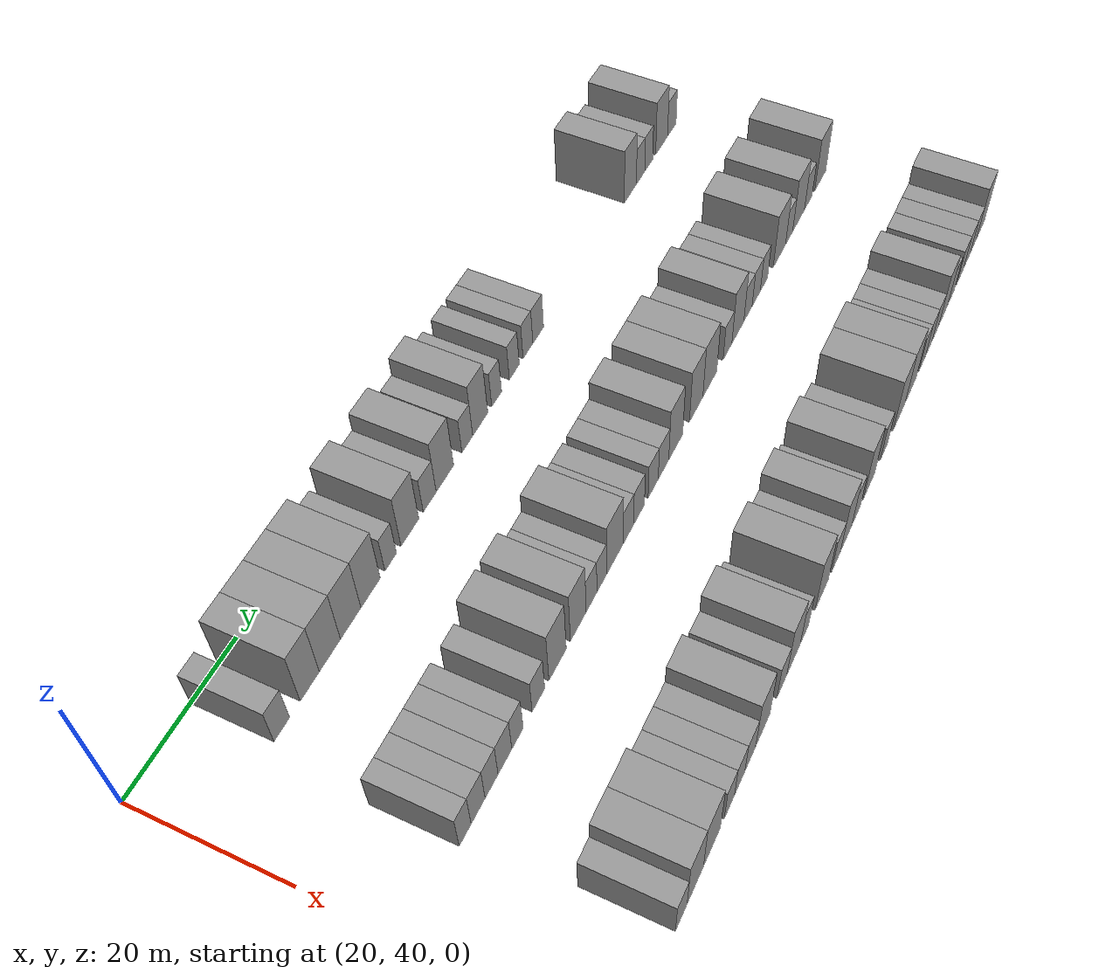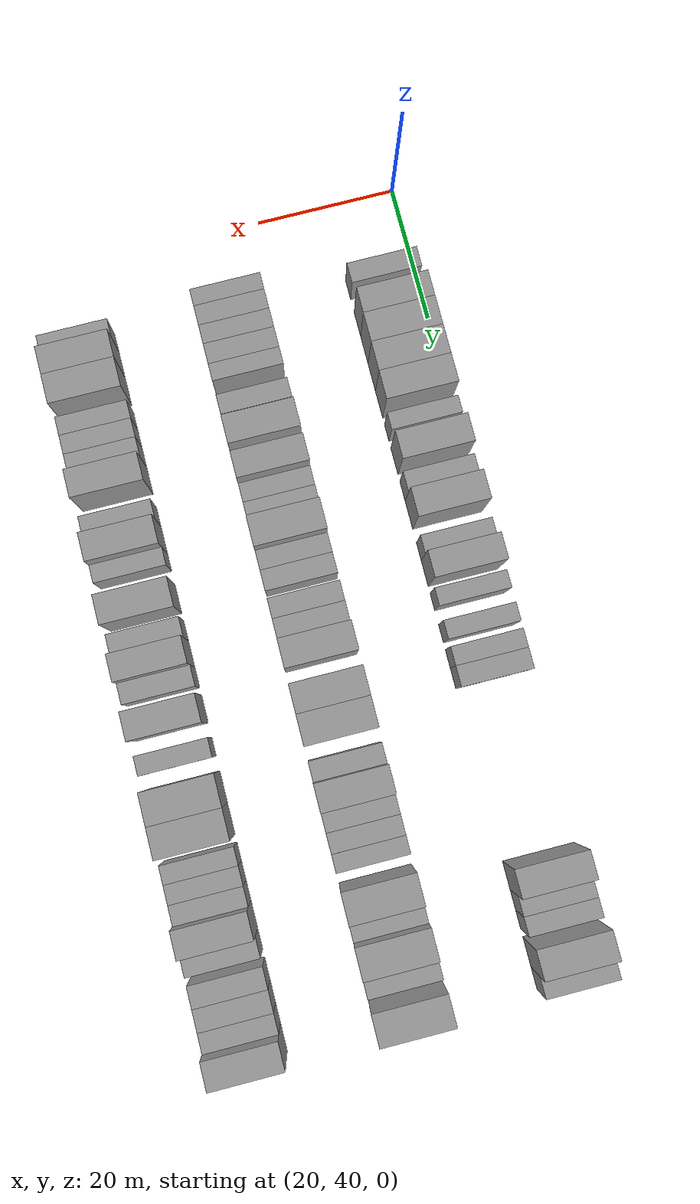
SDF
<sdf version="1.6">
 <world name="default">
  <model name="building_79">
   <static>1</static>
   <pose>25.0000 53.1087 0 0.000000 0.000000 0.000000</pose>
   <link name="link">
    <pose>0 0 3.00 0 0 0</pose>
    <collision name="collision"><geometry><box><size>10.0000 2.8990 6.0000</size></box></geometry></collision>
    <visual name="visual">
     <cast_shadows>0</cast_shadows>
     <geometry><box><size>10.0000 2.8990 6.0000</size></box></geometry>
     <material>
      <script>
       <uri>model://grey_wall/materials/scripts</uri>
       <uri>model://grey_wall/materials/textures</uri>
       <name>vrc/grey_wall</name>
      </script>
     </material>
    </visual>
   </link>
  </model>
  <model name="building_80">
   <static>1</static>
   <pose>25.0000 58.3945 0 0.000000 0.000000 0.000000</pose>
   <link name="link">
    <pose>0 0 4.50 0 0 0</pose>
    <collision name="collision"><geometry><box><size>10.0000 3.6726 9.0000</size></box></geometry></collision>
    <visual name="visual">
     <cast_shadows>0</cast_shadows>
     <geometry><box><size>10.0000 3.6726 9.0000</size></box></geometry>
     <material>
      <script>
       <uri>model://grey_wall/materials/scripts</uri>
       <uri>model://grey_wall/materials/textures</uri>
       <name>vrc/grey_wall</name>
      </script>
     </material>
    </visual>
   </link>
  </model>
  <model name="building_81">
   <static>1</static>
   <pose>25.0000 62.3206 0 0.000000 0.000000 0.000000</pose>
   <link name="link">
    <pose>0 0 4.50 0 0 0</pose>
    <collision name="collision"><geometry><box><size>10.0000 4.1797 9.0000</size></box></geometry></collision>
    <visual name="visual">
     <cast_shadows>0</cast_shadows>
     <geometry><box><size>10.0000 4.1797 9.0000</size></box></geometry>
     <material>
      <script>
       <uri>model://grey_wall/materials/scripts</uri>
       <uri>model://grey_wall/materials/textures</uri>
       <name>vrc/grey_wall</name>
      </script>
     </material>
    </visual>
   </link>
  </model>
  <model name="building_82">
   <static>1</static>
   <pose>25.0000 66.4880 0 0.000000 0.000000 0.000000</pose>
   <link name="link">
    <pose>0 0 4.50 0 0 0</pose>
    <collision name="collision"><geometry><box><size>10.0000 4.1550 9.0000</size></box></geometry></collision>
    <visual name="visual">
     <cast_shadows>0</cast_shadows>
     <geometry><box><size>10.0000 4.1550 9.0000</size></box></geometry>
     <material>
      <script>
       <uri>model://grey_wall/materials/scripts</uri>
       <uri>model://grey_wall/materials/textures</uri>
       <name>vrc/grey_wall</name>
      </script>
     </material>
    </visual>
   </link>
  </model>
  <model name="building_83">
   <static>1</static>
   <pose>25.0000 70.5972 0 0.000000 0.000000 0.000000</pose>
   <link name="link">
    <pose>0 0 4.50 0 0 0</pose>
    <collision name="collision"><geometry><box><size>10.0000 4.0636 9.0000</size></box></geometry></collision>
    <visual name="visual">
     <cast_shadows>0</cast_shadows>
     <geometry><box><size>10.0000 4.0636 9.0000</size></box></geometry>
     <material>
      <script>
       <uri>model://grey_wall/materials/scripts</uri>
       <uri>model://grey_wall/materials/textures</uri>
       <name>vrc/grey_wall</name>
      </script>
     </material>
    </visual>
   </link>
  </model>
  <model name="building_84">
   <static>1</static>
   <pose>25.0000 74.8687 0 0.000000 0.000000 0.000000</pose>
   <link name="link">
    <pose>0 0 3.00 0 0 0</pose>
    <collision name="collision"><geometry><box><size>10.0000 2.4794 6.0000</size></box></geometry></collision>
    <visual name="visual">
     <cast_shadows>0</cast_shadows>
     <geometry><box><size>10.0000 2.4794 6.0000</size></box></geometry>
     <material>
      <script>
       <uri>model://grey_wall/materials/scripts</uri>
       <uri>model://grey_wall/materials/textures</uri>
       <name>vrc/grey_wall</name>
      </script>
     </material>
    </visual>
   </link>
  </model>
  <model name="building_85">
   <static>1</static>
   <pose>25.0000 79.0882 0 0.000000 0.000000 0.000000</pose>
   <link name="link">
    <pose>0 0 4.50 0 0 0</pose>
    <collision name="collision"><geometry><box><size>10.0000 3.9595 9.0000</size></box></geometry></collision>
    <visual name="visual">
     <cast_shadows>0</cast_shadows>
     <geometry><box><size>10.0000 3.9595 9.0000</size></box></geometry>
     <material>
      <script>
       <uri>model://grey_wall/materials/scripts</uri>
       <uri>model://grey_wall/materials/textures</uri>
       <name>vrc/grey_wall</name>
      </script>
     </material>
    </visual>
   </link>
  </model>
  <model name="building_86">
   <static>1</static>
   <pose>25.0000 83.5553 0 0.000000 0.000000 0.000000</pose>
   <link name="link">
    <pose>0 0 3.00 0 0 0</pose>
    <collision name="collision"><geometry><box><size>10.0000 2.9748 6.0000</size></box></geometry></collision>
    <visual name="visual">
     <cast_shadows>0</cast_shadows>
     <geometry><box><size>10.0000 2.9748 6.0000</size></box></geometry>
     <material>
      <script>
       <uri>model://grey_wall/materials/scripts</uri>
       <uri>model://grey_wall/materials/textures</uri>
       <name>vrc/grey_wall</name>
      </script>
     </material>
    </visual>
   </link>
  </model>
  <model name="building_87">
   <static>1</static>
   <pose>25.0000 87.0784 0 0.000000 0.000000 0.000000</pose>
   <link name="link">
    <pose>0 0 4.50 0 0 0</pose>
    <collision name="collision"><geometry><box><size>10.0000 4.0715 9.0000</size></box></geometry></collision>
    <visual name="visual">
     <cast_shadows>0</cast_shadows>
     <geometry><box><size>10.0000 4.0715 9.0000</size></box></geometry>
     <material>
      <script>
       <uri>model://grey_wall/materials/scripts</uri>
       <uri>model://grey_wall/materials/textures</uri>
       <name>vrc/grey_wall</name>
      </script>
     </material>
    </visual>
   </link>
  </model>
  <model name="building_88">
   <static>1</static>
   <pose>25.0000 92.4299 0 0.000000 0.000000 0.000000</pose>
   <link name="link">
    <pose>0 0 3.00 0 0 0</pose>
    <collision name="collision"><geometry><box><size>10.0000 2.6314 6.0000</size></box></geometry></collision>
    <visual name="visual">
     <cast_shadows>0</cast_shadows>
     <geometry><box><size>10.0000 2.6314 6.0000</size></box></geometry>
     <material>
      <script>
       <uri>model://grey_wall/materials/scripts</uri>
       <uri>model://grey_wall/materials/textures</uri>
       <name>vrc/grey_wall</name>
      </script>
     </material>
    </visual>
   </link>
  </model>
  <model name="building_89">
   <static>1</static>
   <pose>25.0000 95.6100 0 0.000000 0.000000 0.000000</pose>
   <link name="link">
    <pose>0 0 4.50 0 0 0</pose>
    <collision name="collision"><geometry><box><size>10.0000 3.7290 9.0000</size></box></geometry></collision>
    <visual name="visual">
     <cast_shadows>0</cast_shadows>
     <geometry><box><size>10.0000 3.7290 9.0000</size></box></geometry>
     <material>
      <script>
       <uri>model://grey_wall/materials/scripts</uri>
       <uri>model://grey_wall/materials/textures</uri>
       <name>vrc/grey_wall</name>
      </script>
     </material>
    </visual>
   </link>
  </model>
  <model name="building_90">
   <static>1</static>
   <pose>25.0000 99.7196 0 0.000000 0.000000 0.000000</pose>
   <link name="link">
    <pose>0 0 3.00 0 0 0</pose>
    <collision name="collision"><geometry><box><size>10.0000 2.4901 6.0000</size></box></geometry></collision>
    <visual name="visual">
     <cast_shadows>0</cast_shadows>
     <geometry><box><size>10.0000 2.4901 6.0000</size></box></geometry>
     <material>
      <script>
       <uri>model://grey_wall/materials/scripts</uri>
       <uri>model://grey_wall/materials/textures</uri>
       <name>vrc/grey_wall</name>
      </script>
     </material>
    </visual>
   </link>
  </model>
  <model name="building_91">
   <static>1</static>
   <pose>25.0000 104.2655 0 0.000000 0.000000 0.000000</pose>
   <link name="link">
    <pose>0 0 3.00 0 0 0</pose>
    <collision name="collision"><geometry><box><size>10.0000 2.6017 6.0000</size></box></geometry></collision>
    <visual name="visual">
     <cast_shadows>0</cast_shadows>
     <geometry><box><size>10.0000 2.6017 6.0000</size></box></geometry>
     <material>
      <script>
       <uri>model://grey_wall/materials/scripts</uri>
       <uri>model://grey_wall/materials/textures</uri>
       <name>vrc/grey_wall</name>
      </script>
     </material>
    </visual>
   </link>
  </model>
  <model name="building_92">
   <static>1</static>
   <pose>25.0000 107.8807 0 0.000000 0.000000 0.000000</pose>
   <link name="link">
    <pose>0 0 3.00 0 0 0</pose>
    <collision name="collision"><geometry><box><size>10.0000 2.6288 6.0000</size></box></geometry></collision>
    <visual name="visual">
     <cast_shadows>0</cast_shadows>
     <geometry><box><size>10.0000 2.6288 6.0000</size></box></geometry>
     <material>
      <script>
       <uri>model://grey_wall/materials/scripts</uri>
       <uri>model://grey_wall/materials/textures</uri>
       <name>vrc/grey_wall</name>
      </script>
     </material>
    </visual>
   </link>
  </model>
  <model name="building_93">
   <static>1</static>
   <pose>25.0000 110.6476 0 0.000000 0.000000 0.000000</pose>
   <link name="link">
    <pose>0 0 3.00 0 0 0</pose>
    <collision name="collision"><geometry><box><size>10.0000 2.9050 6.0000</size></box></geometry></collision>
    <visual name="visual">
     <cast_shadows>0</cast_shadows>
     <geometry><box><size>10.0000 2.9050 6.0000</size></box></geometry>
     <material>
      <script>
       <uri>model://grey_wall/materials/scripts</uri>
       <uri>model://grey_wall/materials/textures</uri>
       <name>vrc/grey_wall</name>
      </script>
     </material>
    </visual>
   </link>
  </model>
  <model name="building_94">
   <static>1</static>
   <pose>25.0000 137.8790 0 0.000000 0.000000 0.000000</pose>
   <link name="link">
    <pose>0 0 4.50 0 0 0</pose>
    <collision name="collision"><geometry><box><size>10.0000 3.8525 9.0000</size></box></geometry></collision>
    <visual name="visual">
     <cast_shadows>0</cast_shadows>
     <geometry><box><size>10.0000 3.8525 9.0000</size></box></geometry>
     <material>
      <script>
       <uri>model://grey_wall/materials/scripts</uri>
       <uri>model://grey_wall/materials/textures</uri>
       <name>vrc/grey_wall</name>
      </script>
     </material>
    </visual>
   </link>
  </model>
  <model name="building_95">
   <static>1</static>
   <pose>25.0000 141.1552 0 0.000000 0.000000 0.000000</pose>
   <link name="link">
    <pose>0 0 3.00 0 0 0</pose>
    <collision name="collision"><geometry><box><size>10.0000 2.7000 6.0000</size></box></geometry></collision>
    <visual name="visual">
     <cast_shadows>0</cast_shadows>
     <geometry><box><size>10.0000 2.7000 6.0000</size></box></geometry>
     <material>
      <script>
       <uri>model://grey_wall/materials/scripts</uri>
       <uri>model://grey_wall/materials/textures</uri>
       <name>vrc/grey_wall</name>
      </script>
     </material>
    </visual>
   </link>
  </model>
  <model name="building_96">
   <static>1</static>
   <pose>25.0000 143.8195 0 0.000000 0.000000 0.000000</pose>
   <link name="link">
    <pose>0 0 3.00 0 0 0</pose>
    <collision name="collision"><geometry><box><size>10.0000 2.6285 6.0000</size></box></geometry></collision>
    <visual name="visual">
     <cast_shadows>0</cast_shadows>
     <geometry><box><size>10.0000 2.6285 6.0000</size></box></geometry>
     <material>
      <script>
       <uri>model://grey_wall/materials/scripts</uri>
       <uri>model://grey_wall/materials/textures</uri>
       <name>vrc/grey_wall</name>
      </script>
     </material>
    </visual>
   </link>
  </model>
  <model name="building_97">
   <static>1</static>
   <pose>25.0000 148.1342 0 0.000000 0.000000 0.000000</pose>
   <link name="link">
    <pose>0 0 4.50 0 0 0</pose>
    <collision name="collision"><geometry><box><size>10.0000 4.0010 9.0000</size></box></geometry></collision>
    <visual name="visual">
     <cast_shadows>0</cast_shadows>
     <geometry><box><size>10.0000 4.0010 9.0000</size></box></geometry>
     <material>
      <script>
       <uri>model://grey_wall/materials/scripts</uri>
       <uri>model://grey_wall/materials/textures</uri>
       <name>vrc/grey_wall</name>
      </script>
     </material>
    </visual>
   </link>
  </model>
  <model name="building_98">
   <static>1</static>
   <pose>25.0000 151.5983 0 0.000000 0.000000 0.000000</pose>
   <link name="link">
    <pose>0 0 3.00 0 0 0</pose>
    <collision name="collision"><geometry><box><size>10.0000 2.9272 6.0000</size></box></geometry></collision>
    <visual name="visual">
     <cast_shadows>0</cast_shadows>
     <geometry><box><size>10.0000 2.9272 6.0000</size></box></geometry>
     <material>
      <script>
       <uri>model://grey_wall/materials/scripts</uri>
       <uri>model://grey_wall/materials/textures</uri>
       <name>vrc/grey_wall</name>
      </script>
     </material>
    </visual>
   </link>
  </model>
  <model name="building_198">
   <static>1</static>
   <pose>47.0000 51.1799 0 0.000000 0.000000 0.000000</pose>
   <link name="link">
    <pose>0 0 3.00 0 0 0</pose>
    <collision name="collision"><geometry><box><size>10.0000 2.4320 6.0000</size></box></geometry></collision>
    <visual name="visual">
     <cast_shadows>0</cast_shadows>
     <geometry><box><size>10.0000 2.4320 6.0000</size></box></geometry>
     <material>
      <script>
       <uri>model://grey_wall/materials/scripts</uri>
       <uri>model://grey_wall/materials/textures</uri>
       <name>vrc/grey_wall</name>
      </script>
     </material>
    </visual>
   </link>
  </model>
  <model name="building_199">
   <static>1</static>
   <pose>47.0000 53.8303 0 0.000000 0.000000 0.000000</pose>
   <link name="link">
    <pose>0 0 3.00 0 0 0</pose>
    <collision name="collision"><geometry><box><size>10.0000 2.8690 6.0000</size></box></geometry></collision>
    <visual name="visual">
     <cast_shadows>0</cast_shadows>
     <geometry><box><size>10.0000 2.8690 6.0000</size></box></geometry>
     <material>
      <script>
       <uri>model://grey_wall/materials/scripts</uri>
       <uri>model://grey_wall/materials/textures</uri>
       <name>vrc/grey_wall</name>
      </script>
     </material>
    </visual>
   </link>
  </model>
  <model name="building_200">
   <static>1</static>
   <pose>47.0000 56.6304 0 0.000000 0.000000 0.000000</pose>
   <link name="link">
    <pose>0 0 3.00 0 0 0</pose>
    <collision name="collision"><geometry><box><size>10.0000 2.7310 6.0000</size></box></geometry></collision>
    <visual name="visual">
     <cast_shadows>0</cast_shadows>
     <geometry><box><size>10.0000 2.7310 6.0000</size></box></geometry>
     <material>
      <script>
       <uri>model://grey_wall/materials/scripts</uri>
       <uri>model://grey_wall/materials/textures</uri>
       <name>vrc/grey_wall</name>
      </script>
     </material>
    </visual>
   </link>
  </model>
  <model name="building_201">
   <static>1</static>
   <pose>47.0000 59.4720 0 0.000000 0.000000 0.000000</pose>
   <link name="link">
    <pose>0 0 3.00 0 0 0</pose>
    <collision name="collision"><geometry><box><size>10.0000 2.9523 6.0000</size></box></geometry></collision>
    <visual name="visual">
     <cast_shadows>0</cast_shadows>
     <geometry><box><size>10.0000 2.9523 6.0000</size></box></geometry>
     <material>
      <script>
       <uri>model://grey_wall/materials/scripts</uri>
       <uri>model://grey_wall/materials/textures</uri>
       <name>vrc/grey_wall</name>
      </script>
     </material>
    </visual>
   </link>
  </model>
  <model name="building_202">
   <static>1</static>
   <pose>47.0000 62.1938 0 0.000000 0.000000 0.000000</pose>
   <link name="link">
    <pose>0 0 3.00 0 0 0</pose>
    <collision name="collision"><geometry><box><size>10.0000 2.4914 6.0000</size></box></geometry></collision>
    <visual name="visual">
     <cast_shadows>0</cast_shadows>
     <geometry><box><size>10.0000 2.4914 6.0000</size></box></geometry>
     <material>
      <script>
       <uri>model://grey_wall/materials/scripts</uri>
       <uri>model://grey_wall/materials/textures</uri>
       <name>vrc/grey_wall</name>
      </script>
     </material>
    </visual>
   </link>
  </model>
  <model name="building_203">
   <static>1</static>
   <pose>47.0000 66.8633 0 0.000000 0.000000 0.000000</pose>
   <link name="link">
    <pose>0 0 3.00 0 0 0</pose>
    <collision name="collision"><geometry><box><size>10.0000 2.8476 6.0000</size></box></geometry></collision>
    <visual name="visual">
     <cast_shadows>0</cast_shadows>
     <geometry><box><size>10.0000 2.8476 6.0000</size></box></geometry>
     <material>
      <script>
       <uri>model://grey_wall/materials/scripts</uri>
       <uri>model://grey_wall/materials/textures</uri>
       <name>vrc/grey_wall</name>
      </script>
     </material>
    </visual>
   </link>
  </model>
  <model name="building_204">
   <static>1</static>
   <pose>47.0000 71.3145 0 0.000000 0.000000 0.000000</pose>
   <link name="link">
    <pose>0 0 4.50 0 0 0</pose>
    <collision name="collision"><geometry><box><size>10.0000 4.0547 9.0000</size></box></geometry></collision>
    <visual name="visual">
     <cast_shadows>0</cast_shadows>
     <geometry><box><size>10.0000 4.0547 9.0000</size></box></geometry>
     <material>
      <script>
       <uri>model://grey_wall/materials/scripts</uri>
       <uri>model://grey_wall/materials/textures</uri>
       <name>vrc/grey_wall</name>
      </script>
     </material>
    </visual>
   </link>
  </model>
  <model name="building_205">
   <static>1</static>
   <pose>47.0000 76.2511 0 0.000000 0.000000 0.000000</pose>
   <link name="link">
    <pose>0 0 4.50 0 0 0</pose>
    <collision name="collision"><geometry><box><size>10.0000 3.8185 9.0000</size></box></geometry></collision>
    <visual name="visual">
     <cast_shadows>0</cast_shadows>
     <geometry><box><size>10.0000 3.8185 9.0000</size></box></geometry>
     <material>
      <script>
       <uri>model://grey_wall/materials/scripts</uri>
       <uri>model://grey_wall/materials/textures</uri>
       <name>vrc/grey_wall</name>
      </script>
     </material>
    </visual>
   </link>
  </model>
  <model name="building_206">
   <static>1</static>
   <pose>47.0000 79.5154 0 0.000000 0.000000 0.000000</pose>
   <link name="link">
    <pose>0 0 3.00 0 0 0</pose>
    <collision name="collision"><geometry><box><size>10.0000 2.7102 6.0000</size></box></geometry></collision>
    <visual name="visual">
     <cast_shadows>0</cast_shadows>
     <geometry><box><size>10.0000 2.7102 6.0000</size></box></geometry>
     <material>
      <script>
       <uri>model://grey_wall/materials/scripts</uri>
       <uri>model://grey_wall/materials/textures</uri>
       <name>vrc/grey_wall</name>
      </script>
     </material>
    </visual>
   </link>
  </model>
  <model name="building_207">
   <static>1</static>
   <pose>47.0000 82.0980 0 0.000000 0.000000 0.000000</pose>
   <link name="link">
    <pose>0 0 3.00 0 0 0</pose>
    <collision name="collision"><geometry><box><size>10.0000 2.4549 6.0000</size></box></geometry></collision>
    <visual name="visual">
     <cast_shadows>0</cast_shadows>
     <geometry><box><size>10.0000 2.4549 6.0000</size></box></geometry>
     <material>
      <script>
       <uri>model://grey_wall/materials/scripts</uri>
       <uri>model://grey_wall/materials/textures</uri>
       <name>vrc/grey_wall</name>
      </script>
     </material>
    </visual>
   </link>
  </model>
  <model name="building_208">
   <static>1</static>
   <pose>47.0000 85.4906 0 0.000000 0.000000 0.000000</pose>
   <link name="link">
    <pose>0 0 4.50 0 0 0</pose>
    <collision name="collision"><geometry><box><size>10.0000 4.3303 9.0000</size></box></geometry></collision>
    <visual name="visual">
     <cast_shadows>0</cast_shadows>
     <geometry><box><size>10.0000 4.3303 9.0000</size></box></geometry>
     <material>
      <script>
       <uri>model://grey_wall/materials/scripts</uri>
       <uri>model://grey_wall/materials/textures</uri>
       <name>vrc/grey_wall</name>
      </script>
     </material>
    </visual>
   </link>
  </model>
  <model name="building_209">
   <static>1</static>
   <pose>47.0000 89.0313 0 0.000000 0.000000 0.000000</pose>
   <link name="link">
    <pose>0 0 3.00 0 0 0</pose>
    <collision name="collision"><geometry><box><size>10.0000 2.7510 6.0000</size></box></geometry></collision>
    <visual name="visual">
     <cast_shadows>0</cast_shadows>
     <geometry><box><size>10.0000 2.7510 6.0000</size></box></geometry>
     <material>
      <script>
       <uri>model://grey_wall/materials/scripts</uri>
       <uri>model://grey_wall/materials/textures</uri>
       <name>vrc/grey_wall</name>
      </script>
     </material>
    </visual>
   </link>
  </model>
  <model name="building_210">
   <static>1</static>
   <pose>47.0000 91.8618 0 0.000000 0.000000 0.000000</pose>
   <link name="link">
    <pose>0 0 3.00 0 0 0</pose>
    <collision name="collision"><geometry><box><size>10.0000 2.9099 6.0000</size></box></geometry></collision>
    <visual name="visual">
     <cast_shadows>0</cast_shadows>
     <geometry><box><size>10.0000 2.9099 6.0000</size></box></geometry>
     <material>
      <script>
       <uri>model://grey_wall/materials/scripts</uri>
       <uri>model://grey_wall/materials/textures</uri>
       <name>vrc/grey_wall</name>
      </script>
     </material>
    </visual>
   </link>
  </model>
  <model name="building_211">
   <static>1</static>
   <pose>47.0000 95.7289 0 0.000000 0.000000 0.000000</pose>
   <link name="link">
    <pose>0 0 3.00 0 0 0</pose>
    <collision name="collision"><geometry><box><size>10.0000 2.8244 6.0000</size></box></geometry></collision>
    <visual name="visual">
     <cast_shadows>0</cast_shadows>
     <geometry><box><size>10.0000 2.8244 6.0000</size></box></geometry>
     <material>
      <script>
       <uri>model://grey_wall/materials/scripts</uri>
       <uri>model://grey_wall/materials/textures</uri>
       <name>vrc/grey_wall</name>
      </script>
     </material>
    </visual>
   </link>
  </model>
  <model name="building_212">
   <static>1</static>
   <pose>47.0000 98.6253 0 0.000000 0.000000 0.000000</pose>
   <link name="link">
    <pose>0 0 3.00 0 0 0</pose>
    <collision name="collision"><geometry><box><size>10.0000 2.9684 6.0000</size></box></geometry></collision>
    <visual name="visual">
     <cast_shadows>0</cast_shadows>
     <geometry><box><size>10.0000 2.9684 6.0000</size></box></geometry>
     <material>
      <script>
       <uri>model://grey_wall/materials/scripts</uri>
       <uri>model://grey_wall/materials/textures</uri>
       <name>vrc/grey_wall</name>
      </script>
     </material>
    </visual>
   </link>
  </model>
  <model name="building_213">
   <static>1</static>
   <pose>47.0000 102.1371 0 0.000000 0.000000 0.000000</pose>
   <link name="link">
    <pose>0 0 4.50 0 0 0</pose>
    <collision name="collision"><geometry><box><size>10.0000 4.0552 9.0000</size></box></geometry></collision>
    <visual name="visual">
     <cast_shadows>0</cast_shadows>
     <geometry><box><size>10.0000 4.0552 9.0000</size></box></geometry>
     <material>
      <script>
       <uri>model://grey_wall/materials/scripts</uri>
       <uri>model://grey_wall/materials/textures</uri>
       <name>vrc/grey_wall</name>
      </script>
     </material>
    </visual>
   </link>
  </model>
  <model name="building_214">
   <static>1</static>
   <pose>47.0000 108.1888 0 0.000000 0.000000 0.000000</pose>
   <link name="link">
    <pose>0 0 4.50 0 0 0</pose>
    <collision name="collision"><geometry><box><size>10.0000 4.0483 9.0000</size></box></geometry></collision>
    <visual name="visual">
     <cast_shadows>0</cast_shadows>
     <geometry><box><size>10.0000 4.0483 9.0000</size></box></geometry>
     <material>
      <script>
       <uri>model://grey_wall/materials/scripts</uri>
       <uri>model://grey_wall/materials/textures</uri>
       <name>vrc/grey_wall</name>
      </script>
     </material>
    </visual>
   </link>
  </model>
  <model name="building_215">
   <static>1</static>
   <pose>47.0000 112.3559 0 0.000000 0.000000 0.000000</pose>
   <link name="link">
    <pose>0 0 4.50 0 0 0</pose>
    <collision name="collision"><geometry><box><size>10.0000 4.2857 9.0000</size></box></geometry></collision>
    <visual name="visual">
     <cast_shadows>0</cast_shadows>
     <geometry><box><size>10.0000 4.2857 9.0000</size></box></geometry>
     <material>
      <script>
       <uri>model://grey_wall/materials/scripts</uri>
       <uri>model://grey_wall/materials/textures</uri>
       <name>vrc/grey_wall</name>
      </script>
     </material>
    </visual>
   </link>
  </model>
  <model name="building_216">
   <static>1</static>
   <pose>47.0000 117.9064 0 0.000000 0.000000 0.000000</pose>
   <link name="link">
    <pose>0 0 3.00 0 0 0</pose>
    <collision name="collision"><geometry><box><size>10.0000 2.8153 6.0000</size></box></geometry></collision>
    <visual name="visual">
     <cast_shadows>0</cast_shadows>
     <geometry><box><size>10.0000 2.8153 6.0000</size></box></geometry>
     <material>
      <script>
       <uri>model://grey_wall/materials/scripts</uri>
       <uri>model://grey_wall/materials/textures</uri>
       <name>vrc/grey_wall</name>
      </script>
     </material>
    </visual>
   </link>
  </model>
  <model name="building_217">
   <static>1</static>
   <pose>47.0000 121.2693 0 0.000000 0.000000 0.000000</pose>
   <link name="link">
    <pose>0 0 4.50 0 0 0</pose>
    <collision name="collision"><geometry><box><size>10.0000 3.9105 9.0000</size></box></geometry></collision>
    <visual name="visual">
     <cast_shadows>0</cast_shadows>
     <geometry><box><size>10.0000 3.9105 9.0000</size></box></geometry>
     <material>
      <script>
       <uri>model://grey_wall/materials/scripts</uri>
       <uri>model://grey_wall/materials/textures</uri>
       <name>vrc/grey_wall</name>
      </script>
     </material>
    </visual>
   </link>
  </model>
  <model name="building_218">
   <static>1</static>
   <pose>47.0000 124.6210 0 0.000000 0.000000 0.000000</pose>
   <link name="link">
    <pose>0 0 3.00 0 0 0</pose>
    <collision name="collision"><geometry><box><size>10.0000 2.7929 6.0000</size></box></geometry></collision>
    <visual name="visual">
     <cast_shadows>0</cast_shadows>
     <geometry><box><size>10.0000 2.7929 6.0000</size></box></geometry>
     <material>
      <script>
       <uri>model://grey_wall/materials/scripts</uri>
       <uri>model://grey_wall/materials/textures</uri>
       <name>vrc/grey_wall</name>
      </script>
     </material>
    </visual>
   </link>
  </model>
  <model name="building_219">
   <static>1</static>
   <pose>47.0000 127.4013 0 0.000000 0.000000 0.000000</pose>
   <link name="link">
    <pose>0 0 3.00 0 0 0</pose>
    <collision name="collision"><geometry><box><size>10.0000 2.7678 6.0000</size></box></geometry></collision>
    <visual name="visual">
     <cast_shadows>0</cast_shadows>
     <geometry><box><size>10.0000 2.7678 6.0000</size></box></geometry>
     <material>
      <script>
       <uri>model://grey_wall/materials/scripts</uri>
       <uri>model://grey_wall/materials/textures</uri>
       <name>vrc/grey_wall</name>
      </script>
     </material>
    </visual>
   </link>
  </model>
  <model name="building_220">
   <static>1</static>
   <pose>47.0000 130.0310 0 0.000000 0.000000 0.000000</pose>
   <link name="link">
    <pose>0 0 3.00 0 0 0</pose>
    <collision name="collision"><geometry><box><size>10.0000 2.4915 6.0000</size></box></geometry></collision>
    <visual name="visual">
     <cast_shadows>0</cast_shadows>
     <geometry><box><size>10.0000 2.4915 6.0000</size></box></geometry>
     <material>
      <script>
       <uri>model://grey_wall/materials/scripts</uri>
       <uri>model://grey_wall/materials/textures</uri>
       <name>vrc/grey_wall</name>
      </script>
     </material>
    </visual>
   </link>
  </model>
  <model name="building_221">
   <static>1</static>
   <pose>47.0000 135.4652 0 0.000000 0.000000 0.000000</pose>
   <link name="link">
    <pose>0 0 4.50 0 0 0</pose>
    <collision name="collision"><geometry><box><size>10.0000 4.3771 9.0000</size></box></geometry></collision>
    <visual name="visual">
     <cast_shadows>0</cast_shadows>
     <geometry><box><size>10.0000 4.3771 9.0000</size></box></geometry>
     <material>
      <script>
       <uri>model://grey_wall/materials/scripts</uri>
       <uri>model://grey_wall/materials/textures</uri>
       <name>vrc/grey_wall</name>
      </script>
     </material>
    </visual>
   </link>
  </model>
  <model name="building_222">
   <static>1</static>
   <pose>47.0000 138.9546 0 0.000000 0.000000 0.000000</pose>
   <link name="link">
    <pose>0 0 3.00 0 0 0</pose>
    <collision name="collision"><geometry><box><size>10.0000 2.6017 6.0000</size></box></geometry></collision>
    <visual name="visual">
     <cast_shadows>0</cast_shadows>
     <geometry><box><size>10.0000 2.6017 6.0000</size></box></geometry>
     <material>
      <script>
       <uri>model://grey_wall/materials/scripts</uri>
       <uri>model://grey_wall/materials/textures</uri>
       <name>vrc/grey_wall</name>
      </script>
     </material>
    </visual>
   </link>
  </model>
  <model name="building_223">
   <static>1</static>
   <pose>47.0000 142.4318 0 0.000000 0.000000 0.000000</pose>
   <link name="link">
    <pose>0 0 4.50 0 0 0</pose>
    <collision name="collision"><geometry><box><size>10.0000 4.3525 9.0000</size></box></geometry></collision>
    <visual name="visual">
     <cast_shadows>0</cast_shadows>
     <geometry><box><size>10.0000 4.3525 9.0000</size></box></geometry>
     <material>
      <script>
       <uri>model://grey_wall/materials/scripts</uri>
       <uri>model://grey_wall/materials/textures</uri>
       <name>vrc/grey_wall</name>
      </script>
     </material>
    </visual>
   </link>
  </model>
  <model name="building_224">
   <static>1</static>
   <pose>47.0000 146.0608 0 0.000000 0.000000 0.000000</pose>
   <link name="link">
    <pose>0 0 3.00 0 0 0</pose>
    <collision name="collision"><geometry><box><size>10.0000 2.9055 6.0000</size></box></geometry></collision>
    <visual name="visual">
     <cast_shadows>0</cast_shadows>
     <geometry><box><size>10.0000 2.9055 6.0000</size></box></geometry>
     <material>
      <script>
       <uri>model://grey_wall/materials/scripts</uri>
       <uri>model://grey_wall/materials/textures</uri>
       <name>vrc/grey_wall</name>
      </script>
     </material>
    </visual>
   </link>
  </model>
  <model name="building_225">
   <static>1</static>
   <pose>47.0000 150.6540 0 0.000000 0.000000 0.000000</pose>
   <link name="link">
    <pose>0 0 4.50 0 0 0</pose>
    <collision name="collision"><geometry><box><size>10.0000 4.2809 9.0000</size></box></geometry></collision>
    <visual name="visual">
     <cast_shadows>0</cast_shadows>
     <geometry><box><size>10.0000 4.2809 9.0000</size></box></geometry>
     <material>
      <script>
       <uri>model://grey_wall/materials/scripts</uri>
       <uri>model://grey_wall/materials/textures</uri>
       <name>vrc/grey_wall</name>
      </script>
     </material>
    </visual>
   </link>
  </model>
  <model name="building_321">
   <static>1</static>
   <pose>69.0000 52.5843 0 0.000000 0.000000 0.000000</pose>
   <link name="link">
    <pose>0 0 3.00 0 0 0</pose>
    <collision name="collision"><geometry><box><size>10.0000 2.7137 6.0000</size></box></geometry></collision>
    <visual name="visual">
     <cast_shadows>0</cast_shadows>
     <geometry><box><size>10.0000 2.7137 6.0000</size></box></geometry>
     <material>
      <script>
       <uri>model://grey_wall/materials/scripts</uri>
       <uri>model://grey_wall/materials/textures</uri>
       <name>vrc/grey_wall</name>
      </script>
     </material>
    </visual>
   </link>
  </model>
  <model name="building_322">
   <static>1</static>
   <pose>69.0000 55.9222 0 0.000000 0.000000 0.000000</pose>
   <link name="link">
    <pose>0 0 4.50 0 0 0</pose>
    <collision name="collision"><geometry><box><size>10.0000 3.9621 9.0000</size></box></geometry></collision>
    <visual name="visual">
     <cast_shadows>0</cast_shadows>
     <geometry><box><size>10.0000 3.9621 9.0000</size></box></geometry>
     <material>
      <script>
       <uri>model://grey_wall/materials/scripts</uri>
       <uri>model://grey_wall/materials/textures</uri>
       <name>vrc/grey_wall</name>
      </script>
     </material>
    </visual>
   </link>
  </model>
  <model name="building_323">
   <static>1</static>
   <pose>69.0000 60.0016 0 0.000000 0.000000 0.000000</pose>
   <link name="link">
    <pose>0 0 4.50 0 0 0</pose>
    <collision name="collision"><geometry><box><size>10.0000 4.1967 9.0000</size></box></geometry></collision>
    <visual name="visual">
     <cast_shadows>0</cast_shadows>
     <geometry><box><size>10.0000 4.1967 9.0000</size></box></geometry>
     <material>
      <script>
       <uri>model://grey_wall/materials/scripts</uri>
       <uri>model://grey_wall/materials/textures</uri>
       <name>vrc/grey_wall</name>
      </script>
     </material>
    </visual>
   </link>
  </model>
  <model name="building_324">
   <static>1</static>
   <pose>69.0000 64.4091 0 0.000000 0.000000 0.000000</pose>
   <link name="link">
    <pose>0 0 3.00 0 0 0</pose>
    <collision name="collision"><geometry><box><size>10.0000 2.6183 6.0000</size></box></geometry></collision>
    <visual name="visual">
     <cast_shadows>0</cast_shadows>
     <geometry><box><size>10.0000 2.6183 6.0000</size></box></geometry>
     <material>
      <script>
       <uri>model://grey_wall/materials/scripts</uri>
       <uri>model://grey_wall/materials/textures</uri>
       <name>vrc/grey_wall</name>
      </script>
     </material>
    </visual>
   </link>
  </model>
  <model name="building_325">
   <static>1</static>
   <pose>69.0000 67.0778 0 0.000000 0.000000 0.000000</pose>
   <link name="link">
    <pose>0 0 3.00 0 0 0</pose>
    <collision name="collision"><geometry><box><size>10.0000 2.7191 6.0000</size></box></geometry></collision>
    <visual name="visual">
     <cast_shadows>0</cast_shadows>
     <geometry><box><size>10.0000 2.7191 6.0000</size></box></geometry>
     <material>
      <script>
       <uri>model://grey_wall/materials/scripts</uri>
       <uri>model://grey_wall/materials/textures</uri>
       <name>vrc/grey_wall</name>
      </script>
     </material>
    </visual>
   </link>
  </model>
  <model name="building_326">
   <static>1</static>
   <pose>69.0000 69.8895 0 0.000000 0.000000 0.000000</pose>
   <link name="link">
    <pose>0 0 3.00 0 0 0</pose>
    <collision name="collision"><geometry><box><size>10.0000 2.9042 6.0000</size></box></geometry></collision>
    <visual name="visual">
     <cast_shadows>0</cast_shadows>
     <geometry><box><size>10.0000 2.9042 6.0000</size></box></geometry>
     <material>
      <script>
       <uri>model://grey_wall/materials/scripts</uri>
       <uri>model://grey_wall/materials/textures</uri>
       <name>vrc/grey_wall</name>
      </script>
     </material>
    </visual>
   </link>
  </model>
  <model name="building_327">
   <static>1</static>
   <pose>69.0000 73.3244 0 0.000000 0.000000 0.000000</pose>
   <link name="link">
    <pose>0 0 4.50 0 0 0</pose>
    <collision name="collision"><geometry><box><size>10.0000 3.9657 9.0000</size></box></geometry></collision>
    <visual name="visual">
     <cast_shadows>0</cast_shadows>
     <geometry><box><size>10.0000 3.9657 9.0000</size></box></geometry>
     <material>
      <script>
       <uri>model://grey_wall/materials/scripts</uri>
       <uri>model://grey_wall/materials/textures</uri>
       <name>vrc/grey_wall</name>
      </script>
     </material>
    </visual>
   </link>
  </model>
  <model name="building_328">
   <static>1</static>
   <pose>69.0000 78.7101 0 0.000000 0.000000 0.000000</pose>
   <link name="link">
    <pose>0 0 3.00 0 0 0</pose>
    <collision name="collision"><geometry><box><size>10.0000 2.8056 6.0000</size></box></geometry></collision>
    <visual name="visual">
     <cast_shadows>0</cast_shadows>
     <geometry><box><size>10.0000 2.8056 6.0000</size></box></geometry>
     <material>
      <script>
       <uri>model://grey_wall/materials/scripts</uri>
       <uri>model://grey_wall/materials/textures</uri>
       <name>vrc/grey_wall</name>
      </script>
     </material>
    </visual>
   </link>
  </model>
  <model name="building_329">
   <static>1</static>
   <pose>69.0000 82.1051 0 0.000000 0.000000 0.000000</pose>
   <link name="link">
    <pose>0 0 4.50 0 0 0</pose>
    <collision name="collision"><geometry><box><size>10.0000 3.9844 9.0000</size></box></geometry></collision>
    <visual name="visual">
     <cast_shadows>0</cast_shadows>
     <geometry><box><size>10.0000 3.9844 9.0000</size></box></geometry>
     <material>
      <script>
       <uri>model://grey_wall/materials/scripts</uri>
       <uri>model://grey_wall/materials/textures</uri>
       <name>vrc/grey_wall</name>
      </script>
     </material>
    </visual>
   </link>
  </model>
  <model name="building_330">
   <static>1</static>
   <pose>69.0000 85.3553 0 0.000000 0.000000 0.000000</pose>
   <link name="link">
    <pose>0 0 3.00 0 0 0</pose>
    <collision name="collision"><geometry><box><size>10.0000 2.5160 6.0000</size></box></geometry></collision>
    <visual name="visual">
     <cast_shadows>0</cast_shadows>
     <geometry><box><size>10.0000 2.5160 6.0000</size></box></geometry>
     <material>
      <script>
       <uri>model://grey_wall/materials/scripts</uri>
       <uri>model://grey_wall/materials/textures</uri>
       <name>vrc/grey_wall</name>
      </script>
     </material>
    </visual>
   </link>
  </model>
  <model name="building_331">
   <static>1</static>
   <pose>69.0000 90.6697 0 0.000000 0.000000 0.000000</pose>
   <link name="link">
    <pose>0 0 4.50 0 0 0</pose>
    <collision name="collision"><geometry><box><size>10.0000 4.1126 9.0000</size></box></geometry></collision>
    <visual name="visual">
     <cast_shadows>0</cast_shadows>
     <geometry><box><size>10.0000 4.1126 9.0000</size></box></geometry>
     <material>
      <script>
       <uri>model://grey_wall/materials/scripts</uri>
       <uri>model://grey_wall/materials/textures</uri>
       <name>vrc/grey_wall</name>
      </script>
     </material>
    </visual>
   </link>
  </model>
  <model name="building_332">
   <static>1</static>
   <pose>69.0000 95.1645 0 0.000000 0.000000 0.000000</pose>
   <link name="link">
    <pose>0 0 3.00 0 0 0</pose>
    <collision name="collision"><geometry><box><size>10.0000 2.8770 6.0000</size></box></geometry></collision>
    <visual name="visual">
     <cast_shadows>0</cast_shadows>
     <geometry><box><size>10.0000 2.8770 6.0000</size></box></geometry>
     <material>
      <script>
       <uri>model://grey_wall/materials/scripts</uri>
       <uri>model://grey_wall/materials/textures</uri>
       <name>vrc/grey_wall</name>
      </script>
     </material>
    </visual>
   </link>
  </model>
  <model name="building_333">
   <static>1</static>
   <pose>69.0000 98.4931 0 0.000000 0.000000 0.000000</pose>
   <link name="link">
    <pose>0 0 4.50 0 0 0</pose>
    <collision name="collision"><geometry><box><size>10.0000 3.7803 9.0000</size></box></geometry></collision>
    <visual name="visual">
     <cast_shadows>0</cast_shadows>
     <geometry><box><size>10.0000 3.7803 9.0000</size></box></geometry>
     <material>
      <script>
       <uri>model://grey_wall/materials/scripts</uri>
       <uri>model://grey_wall/materials/textures</uri>
       <name>vrc/grey_wall</name>
      </script>
     </material>
    </visual>
   </link>
  </model>
  <model name="building_334">
   <static>1</static>
   <pose>69.0000 101.8432 0 0.000000 0.000000 0.000000</pose>
   <link name="link">
    <pose>0 0 3.00 0 0 0</pose>
    <collision name="collision"><geometry><box><size>10.0000 2.9199 6.0000</size></box></geometry></collision>
    <visual name="visual">
     <cast_shadows>0</cast_shadows>
     <geometry><box><size>10.0000 2.9199 6.0000</size></box></geometry>
     <material>
      <script>
       <uri>model://grey_wall/materials/scripts</uri>
       <uri>model://grey_wall/materials/textures</uri>
       <name>vrc/grey_wall</name>
      </script>
     </material>
    </visual>
   </link>
  </model>
  <model name="building_335">
   <static>1</static>
   <pose>69.0000 106.2682 0 0.000000 0.000000 0.000000</pose>
   <link name="link">
    <pose>0 0 4.50 0 0 0</pose>
    <collision name="collision"><geometry><box><size>10.0000 3.9301 9.0000</size></box></geometry></collision>
    <visual name="visual">
     <cast_shadows>0</cast_shadows>
     <geometry><box><size>10.0000 3.9301 9.0000</size></box></geometry>
     <material>
      <script>
       <uri>model://grey_wall/materials/scripts</uri>
       <uri>model://grey_wall/materials/textures</uri>
       <name>vrc/grey_wall</name>
      </script>
     </material>
    </visual>
   </link>
  </model>
  <model name="building_336">
   <static>1</static>
   <pose>69.0000 111.5605 0 0.000000 0.000000 0.000000</pose>
   <link name="link">
    <pose>0 0 3.00 0 0 0</pose>
    <collision name="collision"><geometry><box><size>10.0000 2.6544 6.0000</size></box></geometry></collision>
    <visual name="visual">
     <cast_shadows>0</cast_shadows>
     <geometry><box><size>10.0000 2.6544 6.0000</size></box></geometry>
     <material>
      <script>
       <uri>model://grey_wall/materials/scripts</uri>
       <uri>model://grey_wall/materials/textures</uri>
       <name>vrc/grey_wall</name>
      </script>
     </material>
    </visual>
   </link>
  </model>
  <model name="building_337">
   <static>1</static>
   <pose>69.0000 117.1214 0 0.000000 0.000000 0.000000</pose>
   <link name="link">
    <pose>0 0 4.50 0 0 0</pose>
    <collision name="collision"><geometry><box><size>10.0000 4.4673 9.0000</size></box></geometry></collision>
    <visual name="visual">
     <cast_shadows>0</cast_shadows>
     <geometry><box><size>10.0000 4.4673 9.0000</size></box></geometry>
     <material>
      <script>
       <uri>model://grey_wall/materials/scripts</uri>
       <uri>model://grey_wall/materials/textures</uri>
       <name>vrc/grey_wall</name>
      </script>
     </material>
    </visual>
   </link>
  </model>
  <model name="building_338">
   <static>1</static>
   <pose>69.0000 121.5144 0 0.000000 0.000000 0.000000</pose>
   <link name="link">
    <pose>0 0 4.50 0 0 0</pose>
    <collision name="collision"><geometry><box><size>10.0000 4.3189 9.0000</size></box></geometry></collision>
    <visual name="visual">
     <cast_shadows>0</cast_shadows>
     <geometry><box><size>10.0000 4.3189 9.0000</size></box></geometry>
     <material>
      <script>
       <uri>model://grey_wall/materials/scripts</uri>
       <uri>model://grey_wall/materials/textures</uri>
       <name>vrc/grey_wall</name>
      </script>
     </material>
    </visual>
   </link>
  </model>
  <model name="building_339">
   <static>1</static>
   <pose>69.0000 125.9340 0 0.000000 0.000000 0.000000</pose>
   <link name="link">
    <pose>0 0 3.00 0 0 0</pose>
    <collision name="collision"><geometry><box><size>10.0000 2.5203 6.0000</size></box></geometry></collision>
    <visual name="visual">
     <cast_shadows>0</cast_shadows>
     <geometry><box><size>10.0000 2.5203 6.0000</size></box></geometry>
     <material>
      <script>
       <uri>model://grey_wall/materials/scripts</uri>
       <uri>model://grey_wall/materials/textures</uri>
       <name>vrc/grey_wall</name>
      </script>
     </material>
    </visual>
   </link>
  </model>
  <model name="building_340">
   <static>1</static>
   <pose>69.0000 128.5123 0 0.000000 0.000000 0.000000</pose>
   <link name="link">
    <pose>0 0 3.00 0 0 0</pose>
    <collision name="collision"><geometry><box><size>10.0000 2.6362 6.0000</size></box></geometry></collision>
    <visual name="visual">
     <cast_shadows>0</cast_shadows>
     <geometry><box><size>10.0000 2.6362 6.0000</size></box></geometry>
     <material>
      <script>
       <uri>model://grey_wall/materials/scripts</uri>
       <uri>model://grey_wall/materials/textures</uri>
       <name>vrc/grey_wall</name>
      </script>
     </material>
    </visual>
   </link>
  </model>
  <model name="building_341">
   <static>1</static>
   <pose>69.0000 131.1961 0 0.000000 0.000000 0.000000</pose>
   <link name="link">
    <pose>0 0 3.00 0 0 0</pose>
    <collision name="collision"><geometry><box><size>10.0000 2.7315 6.0000</size></box></geometry></collision>
    <visual name="visual">
     <cast_shadows>0</cast_shadows>
     <geometry><box><size>10.0000 2.7315 6.0000</size></box></geometry>
     <material>
      <script>
       <uri>model://grey_wall/materials/scripts</uri>
       <uri>model://grey_wall/materials/textures</uri>
       <name>vrc/grey_wall</name>
      </script>
     </material>
    </visual>
   </link>
  </model>
  <model name="building_342">
   <static>1</static>
   <pose>69.0000 134.4517 0 0.000000 0.000000 0.000000</pose>
   <link name="link">
    <pose>0 0 4.50 0 0 0</pose>
    <collision name="collision"><geometry><box><size>10.0000 3.7797 9.0000</size></box></geometry></collision>
    <visual name="visual">
     <cast_shadows>0</cast_shadows>
     <geometry><box><size>10.0000 3.7797 9.0000</size></box></geometry>
     <material>
      <script>
       <uri>model://grey_wall/materials/scripts</uri>
       <uri>model://grey_wall/materials/textures</uri>
       <name>vrc/grey_wall</name>
      </script>
     </material>
    </visual>
   </link>
  </model>
  <model name="building_343">
   <static>1</static>
   <pose>69.0000 137.7426 0 0.000000 0.000000 0.000000</pose>
   <link name="link">
    <pose>0 0 3.00 0 0 0</pose>
    <collision name="collision"><geometry><box><size>10.0000 2.8020 6.0000</size></box></geometry></collision>
    <visual name="visual">
     <cast_shadows>0</cast_shadows>
     <geometry><box><size>10.0000 2.8020 6.0000</size></box></geometry>
     <material>
      <script>
       <uri>model://grey_wall/materials/scripts</uri>
       <uri>model://grey_wall/materials/textures</uri>
       <name>vrc/grey_wall</name>
      </script>
     </material>
    </visual>
   </link>
  </model>
  <model name="building_344">
   <static>1</static>
   <pose>69.0000 141.6290 0 0.000000 0.000000 0.000000</pose>
   <link name="link">
    <pose>0 0 3.00 0 0 0</pose>
    <collision name="collision"><geometry><box><size>10.0000 2.9709 6.0000</size></box></geometry></collision>
    <visual name="visual">
     <cast_shadows>0</cast_shadows>
     <geometry><box><size>10.0000 2.9709 6.0000</size></box></geometry>
     <material>
      <script>
       <uri>model://grey_wall/materials/scripts</uri>
       <uri>model://grey_wall/materials/textures</uri>
       <name>vrc/grey_wall</name>
      </script>
     </material>
    </visual>
   </link>
  </model>
  <model name="building_345">
   <static>1</static>
   <pose>69.0000 144.6026 0 0.000000 0.000000 0.000000</pose>
   <link name="link">
    <pose>0 0 3.00 0 0 0</pose>
    <collision name="collision"><geometry><box><size>10.0000 2.9763 6.0000</size></box></geometry></collision>
    <visual name="visual">
     <cast_shadows>0</cast_shadows>
     <geometry><box><size>10.0000 2.9763 6.0000</size></box></geometry>
     <material>
      <script>
       <uri>model://grey_wall/materials/scripts</uri>
       <uri>model://grey_wall/materials/textures</uri>
       <name>vrc/grey_wall</name>
      </script>
     </material>
    </visual>
   </link>
  </model>
  <model name="building_346">
   <static>1</static>
   <pose>69.0000 147.4308 0 0.000000 0.000000 0.000000</pose>
   <link name="link">
    <pose>0 0 3.00 0 0 0</pose>
    <collision name="collision"><geometry><box><size>10.0000 2.6802 6.0000</size></box></geometry></collision>
    <visual name="visual">
     <cast_shadows>0</cast_shadows>
     <geometry><box><size>10.0000 2.6802 6.0000</size></box></geometry>
     <material>
      <script>
       <uri>model://grey_wall/materials/scripts</uri>
       <uri>model://grey_wall/materials/textures</uri>
       <name>vrc/grey_wall</name>
      </script>
     </material>
    </visual>
   </link>
  </model>
  <model name="building_347">
   <static>1</static>
   <pose>69.0000 150.6653 0 0.000000 0.000000 0.000000</pose>
   <link name="link">
    <pose>0 0 4.50 0 0 0</pose>
    <collision name="collision"><geometry><box><size>10.0000 3.7888 9.0000</size></box></geometry></collision>
    <visual name="visual">
     <cast_shadows>0</cast_shadows>
     <geometry><box><size>10.0000 3.7888 9.0000</size></box></geometry>
     <material>
      <script>
       <uri>model://grey_wall/materials/scripts</uri>
       <uri>model://grey_wall/materials/textures</uri>
       <name>vrc/grey_wall</name>
      </script>
     </material>
    </visual>
   </link>
  </model>
 </world>
</sdf>
